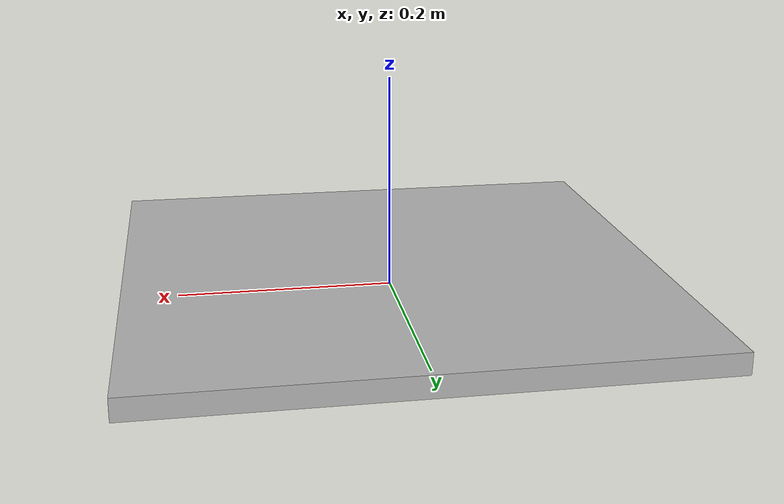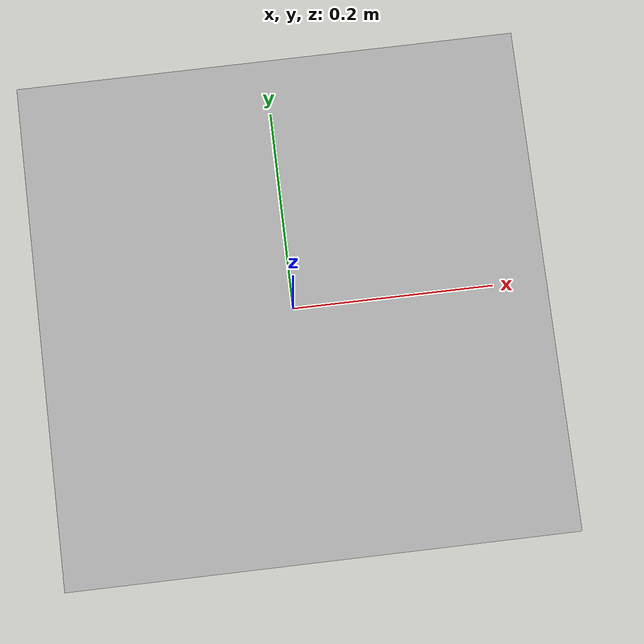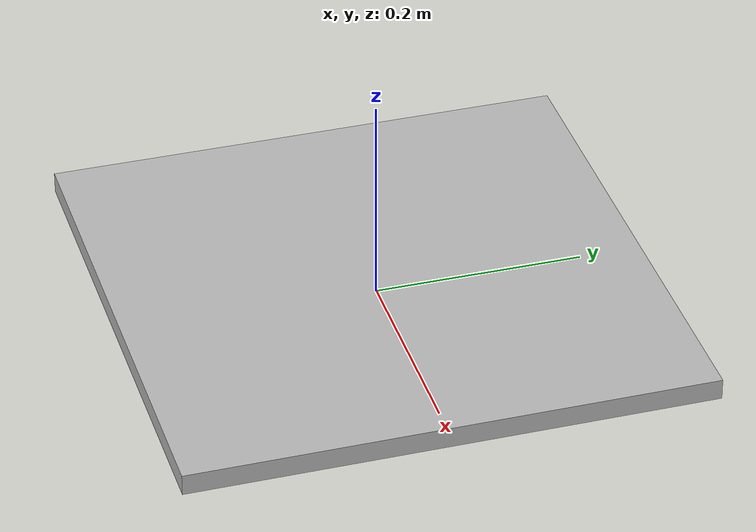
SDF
<?xml version="1.0" ?>
<sdf version="1.5">
    <model name="qr_id1">
    <static>true</static>

		<link name="id1">
    	<pose>0.0 0.0 0.01 0.0 -3.14 -3.14</pose>
      <collision name="collision">
        <geometry>
          <mesh>
            <uri>model://id1/meshes/id1.dae</uri>
          </mesh>
        </geometry>
      </collision>
      <visual name="visual">
        <geometry>
          <mesh>
            <uri>model://id1/meshes/id1.dae</uri>
          </mesh>
        </geometry>
        <cast_shadows>false</cast_shadows>
      </visual>
    </link>

  </model>
</sdf>
